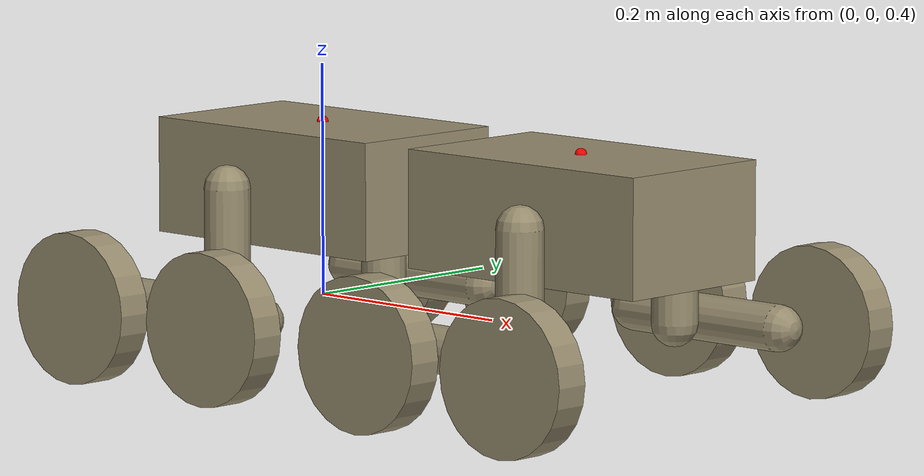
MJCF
<mujoco model="MuJoCo Model">
  <compiler angle="radian"/>

  <option iterations="3" ls_iterations="5" timestep=".002" integrator="Euler">
    <flag eulerdamp="disable"/>
  </option>

  <default>
  	<geom condim="3" contype="0" conaffinity="0"/>
        <default class="hip_actuator">
            <position kp="20" kv="2" forcerange="-16 16" />
        </default>
        <default class="knee_actuator">
            <general biastype="affine" gainprm="1" biasprm="0 0 0 0 0 0" forcelimited="true" gear="1 0 0 0 0 0" forcerange="-20 20"/>
        </default>
        <default class="wheel_actuator">
            <general biastype="affine" gainprm="1" biasprm="0 0 0 0 0 0" forcelimited="true" gear="1 0 0 0 0 0" forcerange="-5 5"/>
        </default>
  </default>

  <worldbody>
    <body name="torso" pos="0 0 0.5">
      <joint name="torso_joint" type="free" limited="false" actuatorfrclimited="false"/>
      <site name="torso_site" pos="0 0 0.05" type="sphere" rgba="1 0 0 1"/>
      <geom size="0.125 0.075 0.05" type="box" mass="10" rgba="0.594118 0.55098 0.433333 1" contype="4" conaffinity="4"/>
      <body name="torso_left_thigh" pos="-0.02 0.075 0">
        <joint name="torso_left_thigh_joint" pos="0 0 0" axis="0 1 0" armature="0.0072" damping="5"/>
        <geom name="torso_left_thigh_geom" size="0.02 0.05" pos="0 0.02 -0.05" type="capsule" mass="0.5" rgba="0.594118 0.55098 0.433333  1"/>
        <body name="torso_left_shin" pos="0 0.06 -0.1">
          <joint name="torso_left_thigh_shin_joint" pos="0 0 0" axis="0 1 0" armature="0.01805" damping="5"/>
          <geom name="torso_left_shin_geom" size="0.02 0.08" quat="0.707107 0 0.707107 0" type="capsule" mass="0.5" rgba="0.594118 0.55098 0.433333  1"/>
          <body name="torso_left_front_wheel" pos="0.08 0.055 0">
            <site name="torso_left_front_wheel_site" pos="0 0 0" rgba="1 0 0 1"/>
            <joint name="torso_left_shin_front_wheel_joint" pos="0 0 0" axis="0 1 0" armature="1e-05" damping="0.2"/>
            <geom name="torso_left_front_wheel_geom" size="0.065 0.015" quat="0.707107 0.707107 0 0" type="cylinder" solref="0.2 0.5" mass="0.5" rgba="0.594118 0.55098 0.433333  1" contype="3" conaffinity="3"/>
          </body>
          <body name="torso_left_rear_wheel" pos="-0.08 0.055 0">
            <site name="torso_left_rear_wheel_site" pos="0 0 0" rgba="1 0 0 1"/>
            <joint name="torso_left_shin_rear_wheel_joint" pos="0 0 0" axis="0 1 0" armature="1e-05" damping="0.2"/>
            <geom name="torso_left_rear_wheel_geom" size="0.065 0.015" quat="0.707107 0.707107 0 0" type="cylinder" solref="0.2 0.5" mass="0.5" rgba="0.594118 0.55098 0.433333  1" contype="3" conaffinity="3"/>
          </body>
        </body>
      </body>
      <body name="torso_right_thigh" pos="-0.02 -0.075 0">
        <joint name="torso_right_thigh_joint" pos="0 0 0" axis="0 1 0" armature="0.0072" damping="5"/>
        <geom name="torso_right_thigh_geom" size="0.02 0.05" pos="0 -0.02 -0.05" type="capsule" mass="0.5" rgba="0.594118 0.55098 0.433333  1"/>
        <body name="torso_right_shin" pos="0 -0.06 -0.1">
          <joint name="torso_right_thigh_shin_joint" pos="0 0 0" axis="0 1 0" armature="0.01805" damping="5"/>
          <geom name="torso_right_shin_geom" size="0.02 0.08" quat="0.707107 0 0.707107 0" type="capsule" mass="0.5" rgba="0.594118 0.55098 0.433333  1"/>
          <body name="torso_right_front_wheel" pos="0.08 -0.055 0">
            <site name="torso_right_front_wheel_site" pos="0 0 0" rgba="1 0 0 1"/>
            <joint name="torso_right_shin_front_wheel_joint" pos="0 0 0" axis="0 1 0" armature="1e-05" damping="0.2"/>
            <geom name="torso_right_front_wheel_geom" size="0.065 0.015" quat="0.707107 0.707107 0 0" type="cylinder" solref="0.2 0.5" mass="0.5" rgba="0.594118 0.55098 0.433333  1" contype="3" conaffinity="3"/>
          </body>
          <body name="torso_right_rear_wheel" pos="-0.08 -0.055 0">
            <site name="torso_right_rear_wheel_site" pos="0 0 0" rgba="1 0 0 1"/>
            <joint name="torso_right_shin_rear_wheel_joint" pos="0 0 0" axis="0 1 0" armature="1e-05" damping="0.2"/>
            <geom name="torso_right_rear_wheel_geom" size="0.065 0.015" quat="0.707107 0.707107 0 0" type="cylinder" solref="0.2 0.5" mass="0.5" rgba="0.594118 0.55098 0.433333  1" contype="3" conaffinity="3"/>
          </body>
        </body>
      </body>
      <body name="head" pos="0.3 0 0">
        <joint name="head_joint" pos="-0.125 0 0" axis="1 0 0" stiffness="10" range="-0.174533 0.174533" damping="1"/>
        <site name="head_site" pos="0 0 0.05" type="sphere" rgba="1 0 0 1"/>
        <geom size="0.125 0.075 0.05" type="box" mass="10" rgba="0.594118 0.55098 0.433333  1" contype="4" conaffinity="4"/>
        <body name="head_left_thigh" pos="0.02 0.075 0">
          <joint name="head_left_thigh_joint" pos="0 0 0" axis="0 1 0" armature="0.0072" damping="5"/>
          <geom name="head_left_thigh_geom" size="0.02 0.05" pos="0 0.02 -0.05" type="capsule" mass="0.5" rgba="0.594118 0.55098 0.433333  1"/>
          <body name="head_left_shin" pos="0 0.06 -0.1">
            <joint name="head_left_thigh_shin_joint" pos="0 0 0" axis="0 1 0" armature="0.01805" damping="5"/>
            <geom name="head_left_shin_geom" size="0.02 0.08" quat="0.707107 0 0.707107 0" type="capsule" mass="0.5" rgba="0.594118 0.55098 0.433333  1"/>
            <body name="head_left_front_wheel" pos="0.08 0.055 0">
              <site name="head_left_front_wheel_site" pos="0 0 0" rgba="1 0 0 1"/>
              <joint name="head_left_shin_front_wheel_joint" pos="0 0 0" axis="0 1 0" armature="1e-05" damping="0.2"/>
              <geom name="head_left_front_wheel_geom" size="0.065 0.015" quat="0.707107 0.707107 0 0" type="cylinder" solref="0.2 0.5" mass="0.5" rgba="0.594118 0.55098 0.433333  1" contype="3" conaffinity="3"/>
            </body>
            <body name="head_left_rear_wheel" pos="-0.08 0.055 0">
              <site name="head_left_rear_wheel_site" pos="0 0 0" rgba="1 0 0 1"/>
              <joint name="head_left_shin_rear_wheel_joint" pos="0 0 0" axis="0 1 0" armature="1e-05" damping="0.2"/>
              <geom name="head_left_rear_wheel_geom" size="0.065 0.015" quat="0.707107 0.707107 0 0" type="cylinder" solref="0.2 0.5" mass="0.5" rgba="0.594118 0.55098 0.433333  1" contype="3" conaffinity="3"/>
            </body>
          </body>
        </body>
        <body name="head_right_thigh" pos="0.02 -0.075 0">
          <joint name="head_right_thigh_joint" pos="0 0 0" axis="0 1 0" armature="0.0072" damping="5"/>
          <geom name="head_right_thigh_geom" size="0.02 0.05" pos="0 -0.02 -0.05" type="capsule" mass="0.5" rgba="0.594118 0.55098 0.433333  1"/>
          <body name="head_right_shin" pos="0 -0.06 -0.1">
            <joint name="head_right_thigh_shin_joint" pos="0 0 0" axis="0 1 0" armature="0.01805" damping="5"/>
            <geom name="head_right_shin_geom" size="0.02 0.08" quat="0.707107 0 0.707107 0" type="capsule" mass="0.5" rgba="0.594118 0.55098 0.433333  1"/>
            <body name="head_right_front_wheel" pos="0.08 -0.055 0">
              <site name="head_right_front_wheel_site" pos="0 0 0" rgba="1 0 0 1"/>
              <joint name="head_right_shin_front_wheel_joint" pos="0 0 0" axis="0 1 0" armature="1e-05" damping="0.2"/>
              <geom name="head_right_front_wheel_geom" size="0.065 0.015" quat="0.707107 0.707107 0 0" type="cylinder" solref="0.2 0.5" mass="0.5" rgba="0.594118 0.55098 0.433333  1" contype="3" conaffinity="3"/>
            </body>
            <body name="head_right_rear_wheel" pos="-0.08 -0.055 0">
              <site name="head_right_rear_wheel_site" pos="0 0 0" rgba="1 0 0 1"/>
              <joint name="head_right_shin_rear_wheel_joint" pos="0 0 0" axis="0 1 0" armature="1e-05" damping="0.2"/>
              <geom name="head_right_rear_wheel_geom" size="0.065 0.015" quat="0.707107 0.707107 0 0" type="cylinder" solref="0.2 0.5" mass="0.5" rgba="0.594118 0.55098 0.433333  1" contype="3" conaffinity="3" />
            </body>
          </body>
        </body>
      </body>
    </body>
  </worldbody>
<sensor>
  <framezaxis objtype="site" objname="torso_site" name="upvector"/>
  <gyro site="torso_site" name="gyro"/>
  <velocimeter site="torso_site" name="local_linvel"/>
  <velocimeter site="head_site" name="local_linvel_head"/>
  <force name = "hrr_force" site="head_right_rear_wheel_site"/>
  <force name = "hrf_force" site="head_right_front_wheel_site"/>
  <force name = "hlr_force" site="head_left_rear_wheel_site"/>
  <force name = "hlf_force" site="head_left_front_wheel_site"/>
  <force name = "trr_force" site="torso_right_rear_wheel_site"/>
  <force name = "trf_force" site="torso_right_front_wheel_site"/>
  <force name = "tlr_force" site="torso_left_rear_wheel_site"/>
  <force name = "tlf_force" site="torso_left_front_wheel_site"/>
  <force name = "torso_force" site="torso_site"/>
  <force name = "head_force" site="head_site"/>
</sensor>

  <actuator>
    <position name="bl_hip" joint="torso_left_thigh_joint" class="hip_actuator"/>
    <general name="bl_knee" joint="torso_left_thigh_shin_joint" class="knee_actuator"/>
    <general name="bl_wheel1_joint" joint="torso_left_shin_front_wheel_joint" class="wheel_actuator"/>
    <general name="bl_wheel2_joint" joint="torso_left_shin_rear_wheel_joint" class="wheel_actuator"/>
    <position name="br_hip" joint="torso_right_thigh_joint" class="hip_actuator"/>
    <general name="br_knee" joint="torso_right_thigh_shin_joint" class="knee_actuator"/>
    <general name="br_wheel1_joint" joint="torso_right_shin_front_wheel_joint" class="wheel_actuator"/>
    <general name="br_wheel2_joint" joint="torso_right_shin_rear_wheel_joint" class="wheel_actuator"/>
    <position name="fl_hip" joint="head_left_thigh_joint" class="hip_actuator"/>
    <general name="fl_knee" joint="head_left_thigh_shin_joint" class="knee_actuator"/>
    <general name="fl_wheel1_joint" joint="head_left_shin_front_wheel_joint" class="wheel_actuator"/>
    <general name="fl_wheel2_joint" joint="head_left_shin_rear_wheel_joint" class="wheel_actuator"/>
    <position name="fr_hip" joint="head_right_thigh_joint" class="hip_actuator"/>
    <general name="fr_knee" joint="head_right_thigh_shin_joint" class="knee_actuator"/>
    <general name="fr_wheel1_joint" joint="head_right_shin_front_wheel_joint" class="wheel_actuator"/>
    <general name="fr_wheel2_joint" joint="head_right_shin_rear_wheel_joint" class="wheel_actuator"/>
  </actuator>

    <keyframe>
      <key name="home"
        qpos="0 0 0.1675 1 0 0 0
              0 0 0 0
              0 0 0 0
              0
              0 0 0 0
              0 0 0 0"
        ctrl="0 0 0 0
              0 0 0 0
              0 0 0 0
              0 0 0 0"/>
    </keyframe>
</mujoco>
